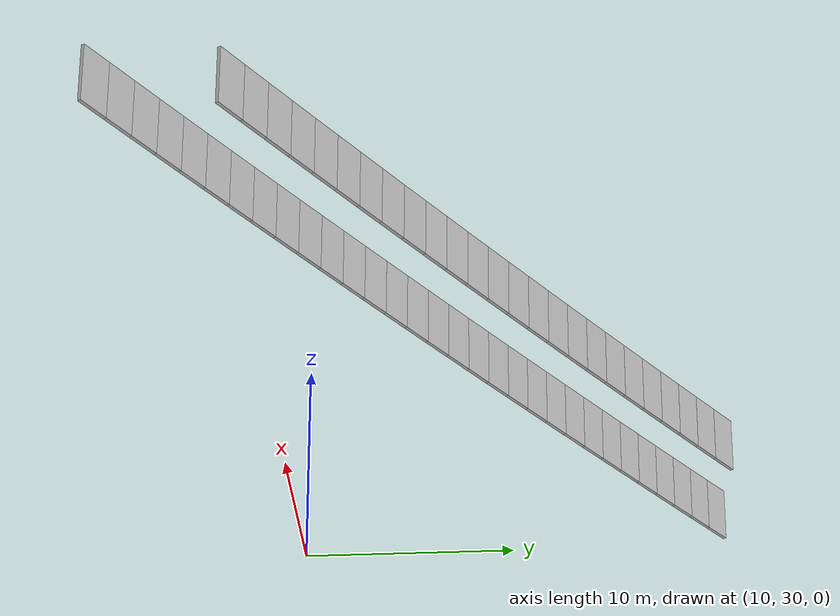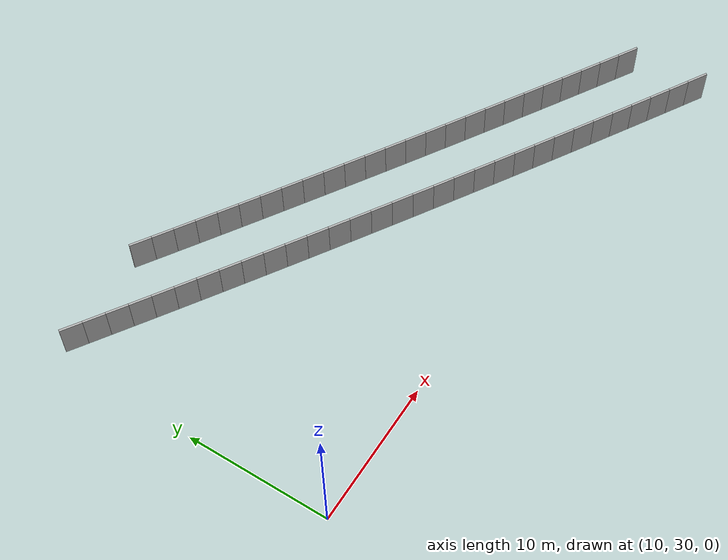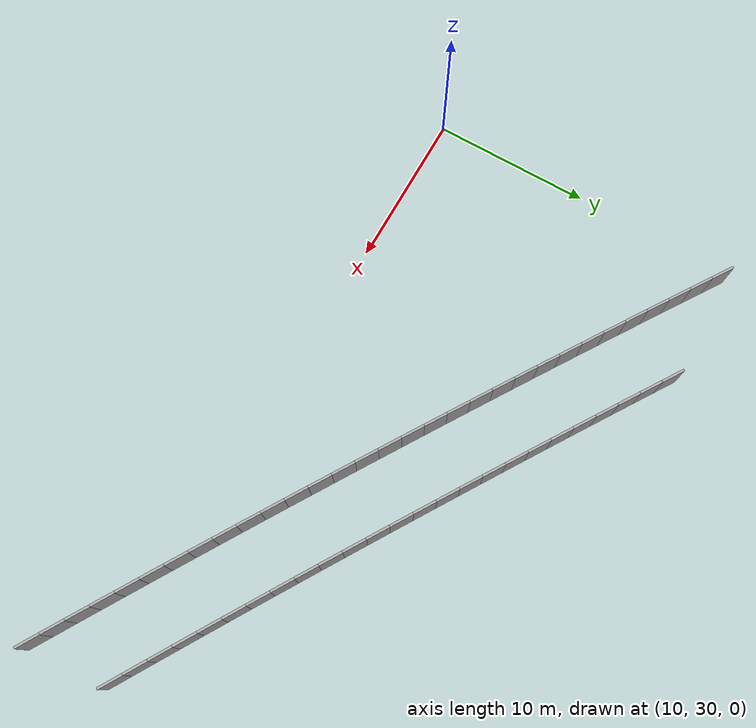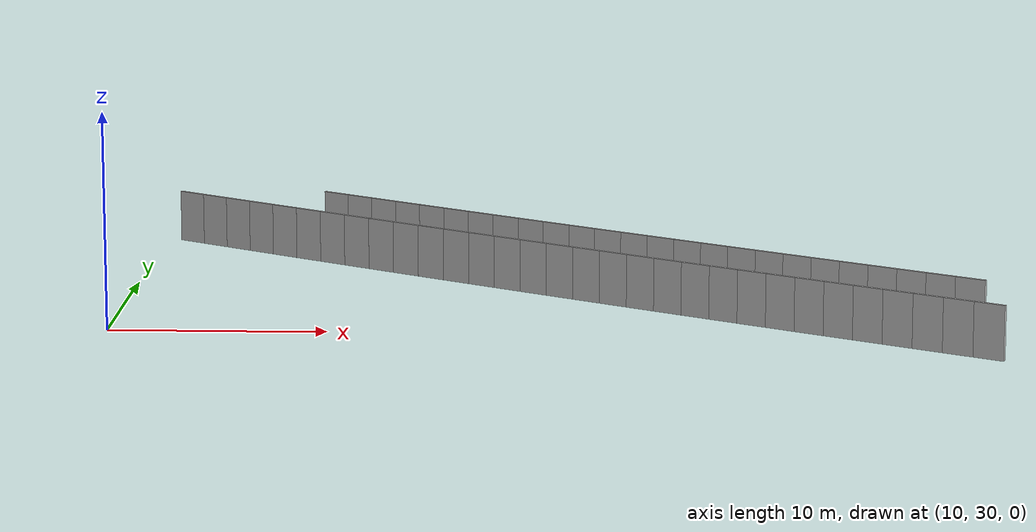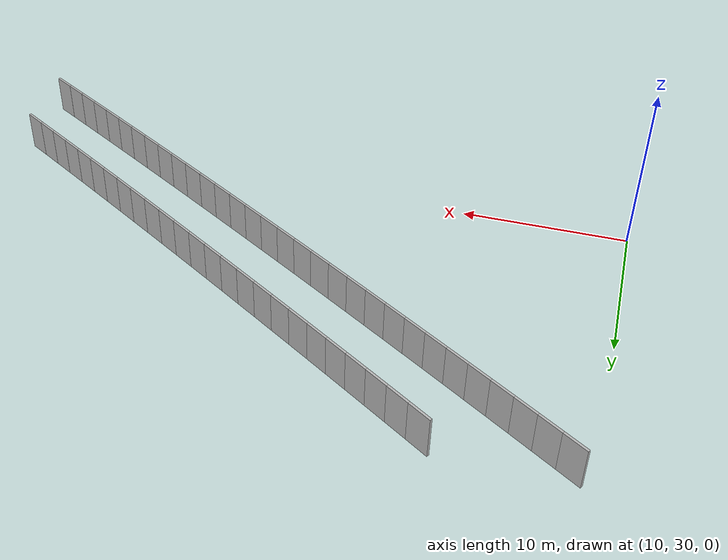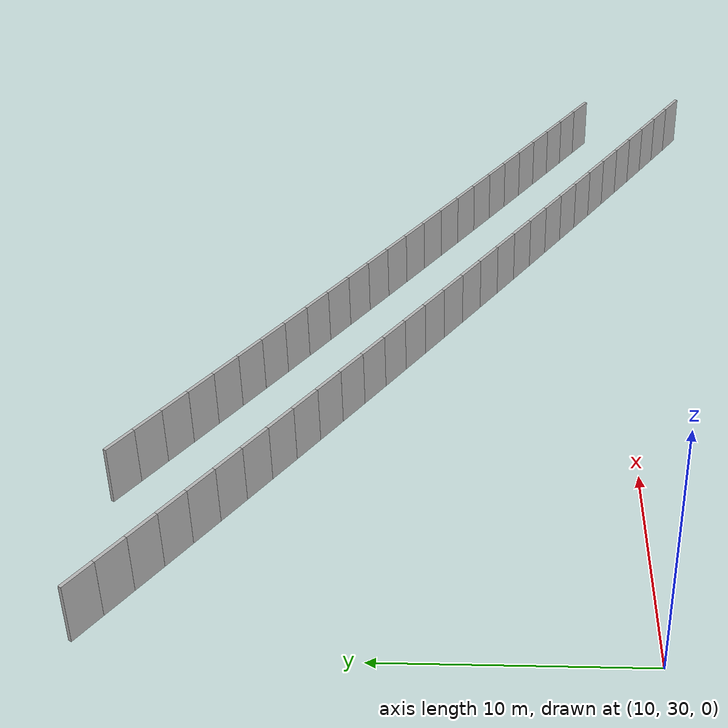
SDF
<?xml version="1.0" ?>
<sdf version="1.6">
  <model name="sps_1206">
    <pose frame="">0 0 0 0 -0 0</pose>
    <static>1</static>
    <self_collide>0</self_collide>
    <allow_auto_disable>0</allow_auto_disable>
    <link name="Wall8641">
      <kinematic>0</kinematic>
      <gravity>1</gravity>
      <self_collide>0</self_collide>
      <collision name="collision">
        <geometry>
          <box>
            <size>1.49898 0.15 2.5</size>
          </box>
        </geometry>
        <pose frame="">0 0 0 0 -0 0</pose>
      </collision>
      <visual name="visual">
        <geometry>
          <box>
            <size>1.49898 0.15 2.5</size>
          </box>
        </geometry>
        <pose frame="">0 0 0 0 -0 0</pose>
        <cast_shadows>1</cast_shadows>
        <transparency>0.0</transparency>
      </visual>
      <pose frame="">11.3565 49.7001 1.25 0 0 -0.581995</pose>
    </link>
    <link name="Wall8642">
      <kinematic>0</kinematic>
      <gravity>1</gravity>
      <self_collide>0</self_collide>
      <collision name="collision">
        <geometry>
          <box>
            <size>1.49903 0.15 2.5</size>
          </box>
        </geometry>
        <pose frame="">0 0 0 0 -0 0</pose>
      </collision>
      <visual name="visual">
        <geometry>
          <box>
            <size>1.49903 0.15 2.5</size>
          </box>
        </geometry>
        <pose frame="">0 0 0 0 -0 0</pose>
        <cast_shadows>1</cast_shadows>
        <transparency>0.0</transparency>
      </visual>
      <pose frame="">12.6093 48.877 1.25 0 0 -0.580561</pose>
    </link>
    <link name="Wall8643">
      <kinematic>0</kinematic>
      <gravity>1</gravity>
      <self_collide>0</self_collide>
      <collision name="collision">
        <geometry>
          <box>
            <size>1.49874 0.15 2.5</size>
          </box>
        </geometry>
        <pose frame="">0 0 0 0 -0 0</pose>
      </collision>
      <visual name="visual">
        <geometry>
          <box>
            <size>1.49874 0.15 2.5</size>
          </box>
        </geometry>
        <pose frame="">0 0 0 0 -0 0</pose>
        <cast_shadows>1</cast_shadows>
        <transparency>0.0</transparency>
      </visual>
      <pose frame="">13.8632 48.0558 1.25 0 0 -0.57908</pose>
    </link>
    <link name="Wall8644">
      <kinematic>0</kinematic>
      <gravity>1</gravity>
      <self_collide>0</self_collide>
      <collision name="collision">
        <geometry>
          <box>
            <size>1.49905 0.15 2.5</size>
          </box>
        </geometry>
        <pose frame="">0 0 0 0 -0 0</pose>
      </collision>
      <visual name="visual">
        <geometry>
          <box>
            <size>1.49905 0.15 2.5</size>
          </box>
        </geometry>
        <pose frame="">0 0 0 0 -0 0</pose>
        <cast_shadows>1</cast_shadows>
        <transparency>0.0</transparency>
      </visual>
      <pose frame="">15.1185 47.2366 1.25 0 0 -0.577387</pose>
    </link>
    <link name="Wall8645">
      <kinematic>0</kinematic>
      <gravity>1</gravity>
      <self_collide>0</self_collide>
      <collision name="collision">
        <geometry>
          <box>
            <size>1.49895 0.15 2.5</size>
          </box>
        </geometry>
        <pose frame="">0 0 0 0 -0 0</pose>
      </collision>
      <visual name="visual">
        <geometry>
          <box>
            <size>1.49895 0.15 2.5</size>
          </box>
        </geometry>
        <pose frame="">0 0 0 0 -0 0</pose>
        <cast_shadows>1</cast_shadows>
        <transparency>0.0</transparency>
      </visual>
      <pose frame="">16.3752 46.4195 1.25 0 0 -0.575636</pose>
    </link>
    <link name="Wall8646">
      <kinematic>0</kinematic>
      <gravity>1</gravity>
      <self_collide>0</self_collide>
      <collision name="collision">
        <geometry>
          <box>
            <size>1.49901 0.15 2.5</size>
          </box>
        </geometry>
        <pose frame="">0 0 0 0 -0 0</pose>
      </collision>
      <visual name="visual">
        <geometry>
          <box>
            <size>1.49901 0.15 2.5</size>
          </box>
        </geometry>
        <pose frame="">0 0 0 0 -0 0</pose>
        <cast_shadows>1</cast_shadows>
        <transparency>0.0</transparency>
      </visual>
      <pose frame="">17.6332 45.6044 1.25 0 0 -0.574202</pose>
    </link>
    <link name="Wall8647">
      <kinematic>0</kinematic>
      <gravity>1</gravity>
      <self_collide>0</self_collide>
      <collision name="collision">
        <geometry>
          <box>
            <size>1.49889 0.15 2.5</size>
          </box>
        </geometry>
        <pose frame="">0 0 0 0 -0 0</pose>
      </collision>
      <visual name="visual">
        <geometry>
          <box>
            <size>1.49889 0.15 2.5</size>
          </box>
        </geometry>
        <pose frame="">0 0 0 0 -0 0</pose>
        <cast_shadows>1</cast_shadows>
        <transparency>0.0</transparency>
      </visual>
      <pose frame="">18.8924 44.7912 1.25 0 0 -0.572654</pose>
    </link>
    <link name="Wall8648">
      <kinematic>0</kinematic>
      <gravity>1</gravity>
      <self_collide>0</self_collide>
      <collision name="collision">
        <geometry>
          <box>
            <size>1.49883 0.15 2.5</size>
          </box>
        </geometry>
        <pose frame="">0 0 0 0 -0 0</pose>
      </collision>
      <visual name="visual">
        <geometry>
          <box>
            <size>1.49883 0.15 2.5</size>
          </box>
        </geometry>
        <pose frame="">0 0 0 0 -0 0</pose>
        <cast_shadows>1</cast_shadows>
        <transparency>0.0</transparency>
      </visual>
      <pose frame="">20.1527 43.98 1.25 0 0 -0.571083</pose>
    </link>
    <link name="Wall8649">
      <kinematic>0</kinematic>
      <gravity>1</gravity>
      <self_collide>0</self_collide>
      <collision name="collision">
        <geometry>
          <box>
            <size>1.499 0.15 2.5</size>
          </box>
        </geometry>
        <pose frame="">0 0 0 0 -0 0</pose>
      </collision>
      <visual name="visual">
        <geometry>
          <box>
            <size>1.499 0.15 2.5</size>
          </box>
        </geometry>
        <pose frame="">0 0 0 0 -0 0</pose>
        <cast_shadows>1</cast_shadows>
        <transparency>0.0</transparency>
      </visual>
      <pose frame="">21.4145 43.1708 1.25 0 0 -0.569459</pose>
    </link>
    <link name="Wall8650">
      <kinematic>0</kinematic>
      <gravity>1</gravity>
      <self_collide>0</self_collide>
      <collision name="collision">
        <geometry>
          <box>
            <size>1.49894 0.15 2.5</size>
          </box>
        </geometry>
        <pose frame="">0 0 0 0 -0 0</pose>
      </collision>
      <visual name="visual">
        <geometry>
          <box>
            <size>1.49894 0.15 2.5</size>
          </box>
        </geometry>
        <pose frame="">0 0 0 0 -0 0</pose>
        <cast_shadows>1</cast_shadows>
        <transparency>0.0</transparency>
      </visual>
      <pose frame="">22.6775 42.3635 1.25 0 0 -0.568035</pose>
    </link>
    <link name="Wall8651">
      <kinematic>0</kinematic>
      <gravity>1</gravity>
      <self_collide>0</self_collide>
      <collision name="collision">
        <geometry>
          <box>
            <size>1.4989 0.15 2.5</size>
          </box>
        </geometry>
        <pose frame="">0 0 0 0 -0 0</pose>
      </collision>
      <visual name="visual">
        <geometry>
          <box>
            <size>1.4989 0.15 2.5</size>
          </box>
        </geometry>
        <pose frame="">0 0 0 0 -0 0</pose>
        <cast_shadows>1</cast_shadows>
        <transparency>0.0</transparency>
      </visual>
      <pose frame="">23.9417 41.5583 1.25 0 0 -0.56617</pose>
    </link>
    <link name="Wall8652">
      <kinematic>0</kinematic>
      <gravity>1</gravity>
      <self_collide>0</self_collide>
      <collision name="collision">
        <geometry>
          <box>
            <size>1.49895 0.15 2.5</size>
          </box>
        </geometry>
        <pose frame="">0 0 0 0 -0 0</pose>
      </collision>
      <visual name="visual">
        <geometry>
          <box>
            <size>1.49895 0.15 2.5</size>
          </box>
        </geometry>
        <pose frame="">0 0 0 0 -0 0</pose>
        <cast_shadows>1</cast_shadows>
        <transparency>0.0</transparency>
      </visual>
      <pose frame="">25.2074 40.7552 1.25 0 0 -0.564702</pose>
    </link>
    <link name="Wall8653">
      <kinematic>0</kinematic>
      <gravity>1</gravity>
      <self_collide>0</self_collide>
      <collision name="collision">
        <geometry>
          <box>
            <size>1.49901 0.15 2.5</size>
          </box>
        </geometry>
        <pose frame="">0 0 0 0 -0 0</pose>
      </collision>
      <visual name="visual">
        <geometry>
          <box>
            <size>1.49901 0.15 2.5</size>
          </box>
        </geometry>
        <pose frame="">0 0 0 0 -0 0</pose>
        <cast_shadows>1</cast_shadows>
        <transparency>0.0</transparency>
      </visual>
      <pose frame="">26.4743 39.954 1.25 0 0 -0.563088</pose>
    </link>
    <link name="Wall8654">
      <kinematic>0</kinematic>
      <gravity>1</gravity>
      <self_collide>0</self_collide>
      <collision name="collision">
        <geometry>
          <box>
            <size>1.49894 0.15 2.5</size>
          </box>
        </geometry>
        <pose frame="">0 0 0 0 -0 0</pose>
      </collision>
      <visual name="visual">
        <geometry>
          <box>
            <size>1.49894 0.15 2.5</size>
          </box>
        </geometry>
        <pose frame="">0 0 0 0 -0 0</pose>
        <cast_shadows>1</cast_shadows>
        <transparency>0.0</transparency>
      </visual>
      <pose frame="">27.7424 39.1547 1.25 0 0 -0.56172</pose>
    </link>
    <link name="Wall8655">
      <kinematic>0</kinematic>
      <gravity>1</gravity>
      <self_collide>0</self_collide>
      <collision name="collision">
        <geometry>
          <box>
            <size>1.49891 0.15 2.5</size>
          </box>
        </geometry>
        <pose frame="">0 0 0 0 -0 0</pose>
      </collision>
      <visual name="visual">
        <geometry>
          <box>
            <size>1.49891 0.15 2.5</size>
          </box>
        </geometry>
        <pose frame="">0 0 0 0 -0 0</pose>
        <cast_shadows>1</cast_shadows>
        <transparency>0.0</transparency>
      </visual>
      <pose frame="">29.0116 38.3574 1.25 0 0 -0.560002</pose>
    </link>
    <link name="Wall8656">
      <kinematic>0</kinematic>
      <gravity>1</gravity>
      <self_collide>0</self_collide>
      <collision name="collision">
        <geometry>
          <box>
            <size>1.49893 0.15 2.5</size>
          </box>
        </geometry>
        <pose frame="">0 0 0 0 -0 0</pose>
      </collision>
      <visual name="visual">
        <geometry>
          <box>
            <size>1.49893 0.15 2.5</size>
          </box>
        </geometry>
        <pose frame="">0 0 0 0 -0 0</pose>
        <cast_shadows>1</cast_shadows>
        <transparency>0.0</transparency>
      </visual>
      <pose frame="">30.2822 37.5622 1.25 0 0 -0.558409</pose>
    </link>
    <link name="Wall8657">
      <kinematic>0</kinematic>
      <gravity>1</gravity>
      <self_collide>0</self_collide>
      <collision name="collision">
        <geometry>
          <box>
            <size>1.49903 0.15 2.5</size>
          </box>
        </geometry>
        <pose frame="">0 0 0 0 -0 0</pose>
      </collision>
      <visual name="visual">
        <geometry>
          <box>
            <size>1.49903 0.15 2.5</size>
          </box>
        </geometry>
        <pose frame="">0 0 0 0 -0 0</pose>
        <cast_shadows>1</cast_shadows>
        <transparency>0.0</transparency>
      </visual>
      <pose frame="">31.5542 36.769 1.25 0 0 -0.55683</pose>
    </link>
    <link name="Wall8658">
      <kinematic>0</kinematic>
      <gravity>1</gravity>
      <self_collide>0</self_collide>
      <collision name="collision">
        <geometry>
          <box>
            <size>1.49898 0.15 2.5</size>
          </box>
        </geometry>
        <pose frame="">0 0 0 0 -0 0</pose>
      </collision>
      <visual name="visual">
        <geometry>
          <box>
            <size>1.49898 0.15 2.5</size>
          </box>
        </geometry>
        <pose frame="">0 0 0 0 -0 0</pose>
        <cast_shadows>1</cast_shadows>
        <transparency>0.0</transparency>
      </visual>
      <pose frame="">32.8274 35.9778 1.25 0 0 -0.555224</pose>
    </link>
    <link name="Wall8659">
      <kinematic>0</kinematic>
      <gravity>1</gravity>
      <self_collide>0</self_collide>
      <collision name="collision">
        <geometry>
          <box>
            <size>1.49878 0.15 2.5</size>
          </box>
        </geometry>
        <pose frame="">0 0 0 0 -0 0</pose>
      </collision>
      <visual name="visual">
        <geometry>
          <box>
            <size>1.49878 0.15 2.5</size>
          </box>
        </geometry>
        <pose frame="">0 0 0 0 -0 0</pose>
        <cast_shadows>1</cast_shadows>
        <transparency>0.0</transparency>
      </visual>
      <pose frame="">34.1016 35.1886 1.25 0 0 -0.553773</pose>
    </link>
    <link name="Wall8660">
      <kinematic>0</kinematic>
      <gravity>1</gravity>
      <self_collide>0</self_collide>
      <collision name="collision">
        <geometry>
          <box>
            <size>1.49912 0.15 2.5</size>
          </box>
        </geometry>
        <pose frame="">0 0 0 0 -0 0</pose>
      </collision>
      <visual name="visual">
        <geometry>
          <box>
            <size>1.49912 0.15 2.5</size>
          </box>
        </geometry>
        <pose frame="">0 0 0 0 -0 0</pose>
        <cast_shadows>1</cast_shadows>
        <transparency>0.0</transparency>
      </visual>
      <pose frame="">35.3773 34.4014 1.25 0 0 -0.552052</pose>
    </link>
    <link name="Wall8661">
      <kinematic>0</kinematic>
      <gravity>1</gravity>
      <self_collide>0</self_collide>
      <collision name="collision">
        <geometry>
          <box>
            <size>1.4988 0.15 2.5</size>
          </box>
        </geometry>
        <pose frame="">0 0 0 0 -0 0</pose>
      </collision>
      <visual name="visual">
        <geometry>
          <box>
            <size>1.4988 0.15 2.5</size>
          </box>
        </geometry>
        <pose frame="">0 0 0 0 -0 0</pose>
        <cast_shadows>1</cast_shadows>
        <transparency>0.0</transparency>
      </visual>
      <pose frame="">36.6542 33.6163 1.25 0 0 -0.550462</pose>
    </link>
    <link name="Wall8662">
      <kinematic>0</kinematic>
      <gravity>1</gravity>
      <self_collide>0</self_collide>
      <collision name="collision">
        <geometry>
          <box>
            <size>1.49877 0.15 2.5</size>
          </box>
        </geometry>
        <pose frame="">0 0 0 0 -0 0</pose>
      </collision>
      <visual name="visual">
        <geometry>
          <box>
            <size>1.49877 0.15 2.5</size>
          </box>
        </geometry>
        <pose frame="">0 0 0 0 -0 0</pose>
        <cast_shadows>1</cast_shadows>
        <transparency>0.0</transparency>
      </visual>
      <pose frame="">37.9322 32.8333 1.25 0 0 -0.548947</pose>
    </link>
    <link name="Wall8663">
      <kinematic>0</kinematic>
      <gravity>1</gravity>
      <self_collide>0</self_collide>
      <collision name="collision">
        <geometry>
          <box>
            <size>1.49907 0.15 2.5</size>
          </box>
        </geometry>
        <pose frame="">0 0 0 0 -0 0</pose>
      </collision>
      <visual name="visual">
        <geometry>
          <box>
            <size>1.49907 0.15 2.5</size>
          </box>
        </geometry>
        <pose frame="">0 0 0 0 -0 0</pose>
        <cast_shadows>1</cast_shadows>
        <transparency>0.0</transparency>
      </visual>
      <pose frame="">39.2114 32.0522 1.25 0 0 -0.547395</pose>
    </link>
    <link name="Wall8664">
      <kinematic>0</kinematic>
      <gravity>1</gravity>
      <self_collide>0</self_collide>
      <collision name="collision">
        <geometry>
          <box>
            <size>1.49889 0.15 2.5</size>
          </box>
        </geometry>
        <pose frame="">0 0 0 0 -0 0</pose>
      </collision>
      <visual name="visual">
        <geometry>
          <box>
            <size>1.49889 0.15 2.5</size>
          </box>
        </geometry>
        <pose frame="">0 0 0 0 -0 0</pose>
        <cast_shadows>1</cast_shadows>
        <transparency>0.0</transparency>
      </visual>
      <pose frame="">40.4921 31.2731 1.25 0 0 -0.545706</pose>
    </link>
    <link name="Wall8665">
      <kinematic>0</kinematic>
      <gravity>1</gravity>
      <self_collide>0</self_collide>
      <collision name="collision">
        <geometry>
          <box>
            <size>1.49892 0.15 2.5</size>
          </box>
        </geometry>
        <pose frame="">0 0 0 0 -0 0</pose>
      </collision>
      <visual name="visual">
        <geometry>
          <box>
            <size>1.49892 0.15 2.5</size>
          </box>
        </geometry>
        <pose frame="">0 0 0 0 -0 0</pose>
        <cast_shadows>1</cast_shadows>
        <transparency>0.0</transparency>
      </visual>
      <pose frame="">41.7739 30.4961 1.25 0 0 -0.54417</pose>
    </link>
    <link name="Wall8666">
      <kinematic>0</kinematic>
      <gravity>1</gravity>
      <self_collide>0</self_collide>
      <collision name="collision">
        <geometry>
          <box>
            <size>1.49887 0.15 2.5</size>
          </box>
        </geometry>
        <pose frame="">0 0 0 0 -0 0</pose>
      </collision>
      <visual name="visual">
        <geometry>
          <box>
            <size>1.49887 0.15 2.5</size>
          </box>
        </geometry>
        <pose frame="">0 0 0 0 -0 0</pose>
        <cast_shadows>1</cast_shadows>
        <transparency>0.0</transparency>
      </visual>
      <pose frame="">43.0568 29.7211 1.25 0 0 -0.542619</pose>
    </link>
    <link name="Wall8667">
      <kinematic>0</kinematic>
      <gravity>1</gravity>
      <self_collide>0</self_collide>
      <collision name="collision">
        <geometry>
          <box>
            <size>1.49912 0.15 2.5</size>
          </box>
        </geometry>
        <pose frame="">0 0 0 0 -0 0</pose>
      </collision>
      <visual name="visual">
        <geometry>
          <box>
            <size>1.49912 0.15 2.5</size>
          </box>
        </geometry>
        <pose frame="">0 0 0 0 -0 0</pose>
        <cast_shadows>1</cast_shadows>
        <transparency>0.0</transparency>
      </visual>
      <pose frame="">44.3411 28.9481 1.25 0 0 -0.540999</pose>
    </link>
    <link name="Wall8668">
      <kinematic>0</kinematic>
      <gravity>1</gravity>
      <self_collide>0</self_collide>
      <collision name="collision">
        <geometry>
          <box>
            <size>1.49892 0.15 2.5</size>
          </box>
        </geometry>
        <pose frame="">0 0 0 0 -0 0</pose>
      </collision>
      <visual name="visual">
        <geometry>
          <box>
            <size>1.49892 0.15 2.5</size>
          </box>
        </geometry>
        <pose frame="">0 0 0 0 -0 0</pose>
        <cast_shadows>1</cast_shadows>
        <transparency>0.0</transparency>
      </visual>
      <pose frame="">45.6267 28.1771 1.25 0 0 -0.539512</pose>
    </link>
    <link name="Wall8669">
      <kinematic>0</kinematic>
      <gravity>1</gravity>
      <self_collide>0</self_collide>
      <collision name="collision">
        <geometry>
          <box>
            <size>1.49901 0.15 2.5</size>
          </box>
        </geometry>
        <pose frame="">0 0 0 0 -0 0</pose>
      </collision>
      <visual name="visual">
        <geometry>
          <box>
            <size>1.49901 0.15 2.5</size>
          </box>
        </geometry>
        <pose frame="">0 0 0 0 -0 0</pose>
        <cast_shadows>1</cast_shadows>
        <transparency>0.0</transparency>
      </visual>
      <pose frame="">46.9134 27.4081 1.25 0 0 -0.537864</pose>
    </link>
    <link name="Wall8670">
      <kinematic>0</kinematic>
      <gravity>1</gravity>
      <self_collide>0</self_collide>
      <collision name="collision">
        <geometry>
          <box>
            <size>1.49898 0.15 2.5</size>
          </box>
        </geometry>
        <pose frame="">0 0 0 0 -0 0</pose>
      </collision>
      <visual name="visual">
        <geometry>
          <box>
            <size>1.49898 0.15 2.5</size>
          </box>
        </geometry>
        <pose frame="">0 0 0 0 -0 0</pose>
        <cast_shadows>1</cast_shadows>
        <transparency>0.0</transparency>
      </visual>
      <pose frame="">48.2013 26.6411 1.25 0 0 -0.536404</pose>
    </link>
    <link name="Wall8671">
      <kinematic>0</kinematic>
      <gravity>1</gravity>
      <self_collide>0</self_collide>
      <collision name="collision">
        <geometry>
          <box>
            <size>1.49877 0.15 2.5</size>
          </box>
        </geometry>
        <pose frame="">0 0 0 0 -0 0</pose>
      </collision>
      <visual name="visual">
        <geometry>
          <box>
            <size>1.49877 0.15 2.5</size>
          </box>
        </geometry>
        <pose frame="">0 0 0 0 -0 0</pose>
        <cast_shadows>1</cast_shadows>
        <transparency>0.0</transparency>
      </visual>
      <pose frame="">49.4903 25.8762 1.25 0 0 -0.534734</pose>
    </link>
    <link name="Wall9726">
      <kinematic>0</kinematic>
      <gravity>1</gravity>
      <self_collide>0</self_collide>
      <collision name="collision">
        <geometry>
          <box>
            <size>1.49243 0.15 2.5</size>
          </box>
        </geometry>
        <pose frame="">0 0 0 0 -0 0</pose>
      </collision>
      <visual name="visual">
        <geometry>
          <box>
            <size>1.49243 0.15 2.5</size>
          </box>
        </geometry>
        <pose frame="">0 0 0 0 -0 0</pose>
        <cast_shadows>1</cast_shadows>
        <transparency>0.0</transparency>
      </visual>
      <pose frame="">18.6294 49.8922 1.25 0 0 -0.575741</pose>
    </link>
    <link name="Wall9727">
      <kinematic>0</kinematic>
      <gravity>1</gravity>
      <self_collide>0</self_collide>
      <collision name="collision">
        <geometry>
          <box>
            <size>1.49234 0.15 2.5</size>
          </box>
        </geometry>
        <pose frame="">0 0 0 0 -0 0</pose>
      </collision>
      <visual name="visual">
        <geometry>
          <box>
            <size>1.49234 0.15 2.5</size>
          </box>
        </geometry>
        <pose frame="">0 0 0 0 -0 0</pose>
        <cast_shadows>1</cast_shadows>
        <transparency>0.0</transparency>
      </visual>
      <pose frame="">19.8818 49.0806 1.25 0 0 -0.57422</pose>
    </link>
    <link name="Wall9728">
      <kinematic>0</kinematic>
      <gravity>1</gravity>
      <self_collide>0</self_collide>
      <collision name="collision">
        <geometry>
          <box>
            <size>1.49227 0.15 2.5</size>
          </box>
        </geometry>
        <pose frame="">0 0 0 0 -0 0</pose>
      </collision>
      <visual name="visual">
        <geometry>
          <box>
            <size>1.49227 0.15 2.5</size>
          </box>
        </geometry>
        <pose frame="">0 0 0 0 -0 0</pose>
        <cast_shadows>1</cast_shadows>
        <transparency>0.0</transparency>
      </visual>
      <pose frame="">21.1354 48.271 1.25 0 0 -0.572642</pose>
    </link>
    <link name="Wall9729">
      <kinematic>0</kinematic>
      <gravity>1</gravity>
      <self_collide>0</self_collide>
      <collision name="collision">
        <geometry>
          <box>
            <size>1.49234 0.15 2.5</size>
          </box>
        </geometry>
        <pose frame="">0 0 0 0 -0 0</pose>
      </collision>
      <visual name="visual">
        <geometry>
          <box>
            <size>1.49234 0.15 2.5</size>
          </box>
        </geometry>
        <pose frame="">0 0 0 0 -0 0</pose>
        <cast_shadows>1</cast_shadows>
        <transparency>0.0</transparency>
      </visual>
      <pose frame="">22.3903 47.4634 1.25 0 0 -0.571055</pose>
    </link>
    <link name="Wall9730">
      <kinematic>0</kinematic>
      <gravity>1</gravity>
      <self_collide>0</self_collide>
      <collision name="collision">
        <geometry>
          <box>
            <size>1.49259 0.15 2.5</size>
          </box>
        </geometry>
        <pose frame="">0 0 0 0 -0 0</pose>
      </collision>
      <visual name="visual">
        <geometry>
          <box>
            <size>1.49259 0.15 2.5</size>
          </box>
        </geometry>
        <pose frame="">0 0 0 0 -0 0</pose>
        <cast_shadows>1</cast_shadows>
        <transparency>0.0</transparency>
      </visual>
      <pose frame="">23.6465 46.6577 1.25 0 0 -0.569492</pose>
    </link>
    <link name="Wall9731">
      <kinematic>0</kinematic>
      <gravity>1</gravity>
      <self_collide>0</self_collide>
      <collision name="collision">
        <geometry>
          <box>
            <size>1.49248 0.15 2.5</size>
          </box>
        </geometry>
        <pose frame="">0 0 0 0 -0 0</pose>
      </collision>
      <visual name="visual">
        <geometry>
          <box>
            <size>1.49248 0.15 2.5</size>
          </box>
        </geometry>
        <pose frame="">0 0 0 0 -0 0</pose>
        <cast_shadows>1</cast_shadows>
        <transparency>0.0</transparency>
      </visual>
      <pose frame="">24.9041 45.8539 1.25 0 0 -0.567937</pose>
    </link>
    <link name="Wall9732">
      <kinematic>0</kinematic>
      <gravity>1</gravity>
      <self_collide>0</self_collide>
      <collision name="collision">
        <geometry>
          <box>
            <size>1.49238 0.15 2.5</size>
          </box>
        </geometry>
        <pose frame="">0 0 0 0 -0 0</pose>
      </collision>
      <visual name="visual">
        <geometry>
          <box>
            <size>1.49238 0.15 2.5</size>
          </box>
        </geometry>
        <pose frame="">0 0 0 0 -0 0</pose>
        <cast_shadows>1</cast_shadows>
        <transparency>0.0</transparency>
      </visual>
      <pose frame="">26.163 45.0522 1.25 0 0 -0.566234</pose>
    </link>
    <link name="Wall9733">
      <kinematic>0</kinematic>
      <gravity>1</gravity>
      <self_collide>0</self_collide>
      <collision name="collision">
        <geometry>
          <box>
            <size>1.49248 0.15 2.5</size>
          </box>
        </geometry>
        <pose frame="">0 0 0 0 -0 0</pose>
      </collision>
      <visual name="visual">
        <geometry>
          <box>
            <size>1.49248 0.15 2.5</size>
          </box>
        </geometry>
        <pose frame="">0 0 0 0 -0 0</pose>
        <cast_shadows>1</cast_shadows>
        <transparency>0.0</transparency>
      </visual>
      <pose frame="">27.4231 44.2525 1.25 0 0 -0.564738</pose>
    </link>
    <link name="Wall9734">
      <kinematic>0</kinematic>
      <gravity>1</gravity>
      <self_collide>0</self_collide>
      <collision name="collision">
        <geometry>
          <box>
            <size>1.49242 0.15 2.5</size>
          </box>
        </geometry>
        <pose frame="">0 0 0 0 -0 0</pose>
      </collision>
      <visual name="visual">
        <geometry>
          <box>
            <size>1.49242 0.15 2.5</size>
          </box>
        </geometry>
        <pose frame="">0 0 0 0 -0 0</pose>
        <cast_shadows>1</cast_shadows>
        <transparency>0.0</transparency>
      </visual>
      <pose frame="">28.6844 43.4548 1.25 0 0 -0.563069</pose>
    </link>
    <link name="Wall9735">
      <kinematic>0</kinematic>
      <gravity>1</gravity>
      <self_collide>0</self_collide>
      <collision name="collision">
        <geometry>
          <box>
            <size>1.49227 0.15 2.5</size>
          </box>
        </geometry>
        <pose frame="">0 0 0 0 -0 0</pose>
      </collision>
      <visual name="visual">
        <geometry>
          <box>
            <size>1.49227 0.15 2.5</size>
          </box>
        </geometry>
        <pose frame="">0 0 0 0 -0 0</pose>
        <cast_shadows>1</cast_shadows>
        <transparency>0.0</transparency>
      </visual>
      <pose frame="">29.947 42.6591 1.25 0 0 -0.561682</pose>
    </link>
    <link name="Wall9736">
      <kinematic>0</kinematic>
      <gravity>1</gravity>
      <self_collide>0</self_collide>
      <collision name="collision">
        <geometry>
          <box>
            <size>1.49239 0.15 2.5</size>
          </box>
        </geometry>
        <pose frame="">0 0 0 0 -0 0</pose>
      </collision>
      <visual name="visual">
        <geometry>
          <box>
            <size>1.49239 0.15 2.5</size>
          </box>
        </geometry>
        <pose frame="">0 0 0 0 -0 0</pose>
        <cast_shadows>1</cast_shadows>
        <transparency>0.0</transparency>
      </visual>
      <pose frame="">31.2107 41.8653 1.25 0 0 -0.560039</pose>
    </link>
    <link name="Wall9737">
      <kinematic>0</kinematic>
      <gravity>1</gravity>
      <self_collide>0</self_collide>
      <collision name="collision">
        <geometry>
          <box>
            <size>1.49236 0.15 2.5</size>
          </box>
        </geometry>
        <pose frame="">0 0 0 0 -0 0</pose>
      </collision>
      <visual name="visual">
        <geometry>
          <box>
            <size>1.49236 0.15 2.5</size>
          </box>
        </geometry>
        <pose frame="">0 0 0 0 -0 0</pose>
        <cast_shadows>1</cast_shadows>
        <transparency>0.0</transparency>
      </visual>
      <pose frame="">32.4757 41.0735 1.25 0 0 -0.558461</pose>
    </link>
    <link name="Wall9738">
      <kinematic>0</kinematic>
      <gravity>1</gravity>
      <self_collide>0</self_collide>
      <collision name="collision">
        <geometry>
          <box>
            <size>1.49236 0.15 2.5</size>
          </box>
        </geometry>
        <pose frame="">0 0 0 0 -0 0</pose>
      </collision>
      <visual name="visual">
        <geometry>
          <box>
            <size>1.49236 0.15 2.5</size>
          </box>
        </geometry>
        <pose frame="">0 0 0 0 -0 0</pose>
        <cast_shadows>1</cast_shadows>
        <transparency>0.0</transparency>
      </visual>
      <pose frame="">33.742 40.2838 1.25 0 0 -0.55677</pose>
    </link>
    <link name="Wall9739">
      <kinematic>0</kinematic>
      <gravity>1</gravity>
      <self_collide>0</self_collide>
      <collision name="collision">
        <geometry>
          <box>
            <size>1.49244 0.15 2.5</size>
          </box>
        </geometry>
        <pose frame="">0 0 0 0 -0 0</pose>
      </collision>
      <visual name="visual">
        <geometry>
          <box>
            <size>1.49244 0.15 2.5</size>
          </box>
        </geometry>
        <pose frame="">0 0 0 0 -0 0</pose>
        <cast_shadows>1</cast_shadows>
        <transparency>0.0</transparency>
      </visual>
      <pose frame="">35.0095 39.4961 1.25 0 0 -0.555296</pose>
    </link>
    <link name="Wall9740">
      <kinematic>0</kinematic>
      <gravity>1</gravity>
      <self_collide>0</self_collide>
      <collision name="collision">
        <geometry>
          <box>
            <size>1.49247 0.15 2.5</size>
          </box>
        </geometry>
        <pose frame="">0 0 0 0 -0 0</pose>
      </collision>
      <visual name="visual">
        <geometry>
          <box>
            <size>1.49247 0.15 2.5</size>
          </box>
        </geometry>
        <pose frame="">0 0 0 0 -0 0</pose>
        <cast_shadows>1</cast_shadows>
        <transparency>0.0</transparency>
      </visual>
      <pose frame="">36.2784 38.7104 1.25 0 0 -0.553549</pose>
    </link>
    <link name="Wall9741">
      <kinematic>0</kinematic>
      <gravity>1</gravity>
      <self_collide>0</self_collide>
      <collision name="collision">
        <geometry>
          <box>
            <size>1.49239 0.15 2.5</size>
          </box>
        </geometry>
        <pose frame="">0 0 0 0 -0 0</pose>
      </collision>
      <visual name="visual">
        <geometry>
          <box>
            <size>1.49239 0.15 2.5</size>
          </box>
        </geometry>
        <pose frame="">0 0 0 0 -0 0</pose>
        <cast_shadows>1</cast_shadows>
        <transparency>0.0</transparency>
      </visual>
      <pose frame="">37.5485 37.9267 1.25 0 0 -0.55214</pose>
    </link>
    <link name="Wall9742">
      <kinematic>0</kinematic>
      <gravity>1</gravity>
      <self_collide>0</self_collide>
      <collision name="collision">
        <geometry>
          <box>
            <size>1.49239 0.15 2.5</size>
          </box>
        </geometry>
        <pose frame="">0 0 0 0 -0 0</pose>
      </collision>
      <visual name="visual">
        <geometry>
          <box>
            <size>1.49239 0.15 2.5</size>
          </box>
        </geometry>
        <pose frame="">0 0 0 0 -0 0</pose>
        <cast_shadows>1</cast_shadows>
        <transparency>0.0</transparency>
      </visual>
      <pose frame="">38.8198 37.145 1.25 0 0 -0.550414</pose>
    </link>
    <link name="Wall9743">
      <kinematic>0</kinematic>
      <gravity>1</gravity>
      <self_collide>0</self_collide>
      <collision name="collision">
        <geometry>
          <box>
            <size>1.49235 0.15 2.5</size>
          </box>
        </geometry>
        <pose frame="">0 0 0 0 -0 0</pose>
      </collision>
      <visual name="visual">
        <geometry>
          <box>
            <size>1.49235 0.15 2.5</size>
          </box>
        </geometry>
        <pose frame="">0 0 0 0 -0 0</pose>
        <cast_shadows>1</cast_shadows>
        <transparency>0.0</transparency>
      </visual>
      <pose frame="">40.0923 36.3653 1.25 0 0 -0.54904</pose>
    </link>
    <link name="Wall9744">
      <kinematic>0</kinematic>
      <gravity>1</gravity>
      <self_collide>0</self_collide>
      <collision name="collision">
        <geometry>
          <box>
            <size>1.4924 0.15 2.5</size>
          </box>
        </geometry>
        <pose frame="">0 0 0 0 -0 0</pose>
      </collision>
      <visual name="visual">
        <geometry>
          <box>
            <size>1.4924 0.15 2.5</size>
          </box>
        </geometry>
        <pose frame="">0 0 0 0 -0 0</pose>
        <cast_shadows>1</cast_shadows>
        <transparency>0.0</transparency>
      </visual>
      <pose frame="">41.3661 35.5876 1.25 0 0 -0.547293</pose>
    </link>
    <link name="Wall9745">
      <kinematic>0</kinematic>
      <gravity>1</gravity>
      <self_collide>0</self_collide>
      <collision name="collision">
        <geometry>
          <box>
            <size>1.49244 0.15 2.5</size>
          </box>
        </geometry>
        <pose frame="">0 0 0 0 -0 0</pose>
      </collision>
      <visual name="visual">
        <geometry>
          <box>
            <size>1.49244 0.15 2.5</size>
          </box>
        </geometry>
        <pose frame="">0 0 0 0 -0 0</pose>
        <cast_shadows>1</cast_shadows>
        <transparency>0.0</transparency>
      </visual>
      <pose frame="">42.641 34.8119 1.25 0 0 -0.545841</pose>
    </link>
    <link name="Wall9746">
      <kinematic>0</kinematic>
      <gravity>1</gravity>
      <self_collide>0</self_collide>
      <collision name="collision">
        <geometry>
          <box>
            <size>1.49243 0.15 2.5</size>
          </box>
        </geometry>
        <pose frame="">0 0 0 0 -0 0</pose>
      </collision>
      <visual name="visual">
        <geometry>
          <box>
            <size>1.49243 0.15 2.5</size>
          </box>
        </geometry>
        <pose frame="">0 0 0 0 -0 0</pose>
        <cast_shadows>1</cast_shadows>
        <transparency>0.0</transparency>
      </visual>
      <pose frame="">43.9173 34.0382 1.25 0 0 -0.544172</pose>
    </link>
    <link name="Wall9747">
      <kinematic>0</kinematic>
      <gravity>1</gravity>
      <self_collide>0</self_collide>
      <collision name="collision">
        <geometry>
          <box>
            <size>1.49229 0.15 2.5</size>
          </box>
        </geometry>
        <pose frame="">0 0 0 0 -0 0</pose>
      </collision>
      <visual name="visual">
        <geometry>
          <box>
            <size>1.49229 0.15 2.5</size>
          </box>
        </geometry>
        <pose frame="">0 0 0 0 -0 0</pose>
        <cast_shadows>1</cast_shadows>
        <transparency>0.0</transparency>
      </visual>
      <pose frame="">45.1947 33.2666 1.25 0 0 -0.542601</pose>
    </link>
    <link name="Wall9748">
      <kinematic>0</kinematic>
      <gravity>1</gravity>
      <self_collide>0</self_collide>
      <collision name="collision">
        <geometry>
          <box>
            <size>1.49248 0.15 2.5</size>
          </box>
        </geometry>
        <pose frame="">0 0 0 0 -0 0</pose>
      </collision>
      <visual name="visual">
        <geometry>
          <box>
            <size>1.49248 0.15 2.5</size>
          </box>
        </geometry>
        <pose frame="">0 0 0 0 -0 0</pose>
        <cast_shadows>1</cast_shadows>
        <transparency>0.0</transparency>
      </visual>
      <pose frame="">46.4733 32.4969 1.25 0 0 -0.541142</pose>
    </link>
    <link name="Wall9749">
      <kinematic>0</kinematic>
      <gravity>1</gravity>
      <self_collide>0</self_collide>
      <collision name="collision">
        <geometry>
          <box>
            <size>1.4925 0.15 2.5</size>
          </box>
        </geometry>
        <pose frame="">0 0 0 0 -0 0</pose>
      </collision>
      <visual name="visual">
        <geometry>
          <box>
            <size>1.4925 0.15 2.5</size>
          </box>
        </geometry>
        <pose frame="">0 0 0 0 -0 0</pose>
        <cast_shadows>1</cast_shadows>
        <transparency>0.0</transparency>
      </visual>
      <pose frame="">47.7532 31.7292 1.25 0 0 -0.539417</pose>
    </link>
    <link name="Wall9750">
      <kinematic>0</kinematic>
      <gravity>1</gravity>
      <self_collide>0</self_collide>
      <collision name="collision">
        <geometry>
          <box>
            <size>1.49236 0.15 2.5</size>
          </box>
        </geometry>
        <pose frame="">0 0 0 0 -0 0</pose>
      </collision>
      <visual name="visual">
        <geometry>
          <box>
            <size>1.49236 0.15 2.5</size>
          </box>
        </geometry>
        <pose frame="">0 0 0 0 -0 0</pose>
        <cast_shadows>1</cast_shadows>
        <transparency>0.0</transparency>
      </visual>
      <pose frame="">49.0343 30.9636 1.25 0 0 -0.537901</pose>
    </link>
  </model>
</sdf>
